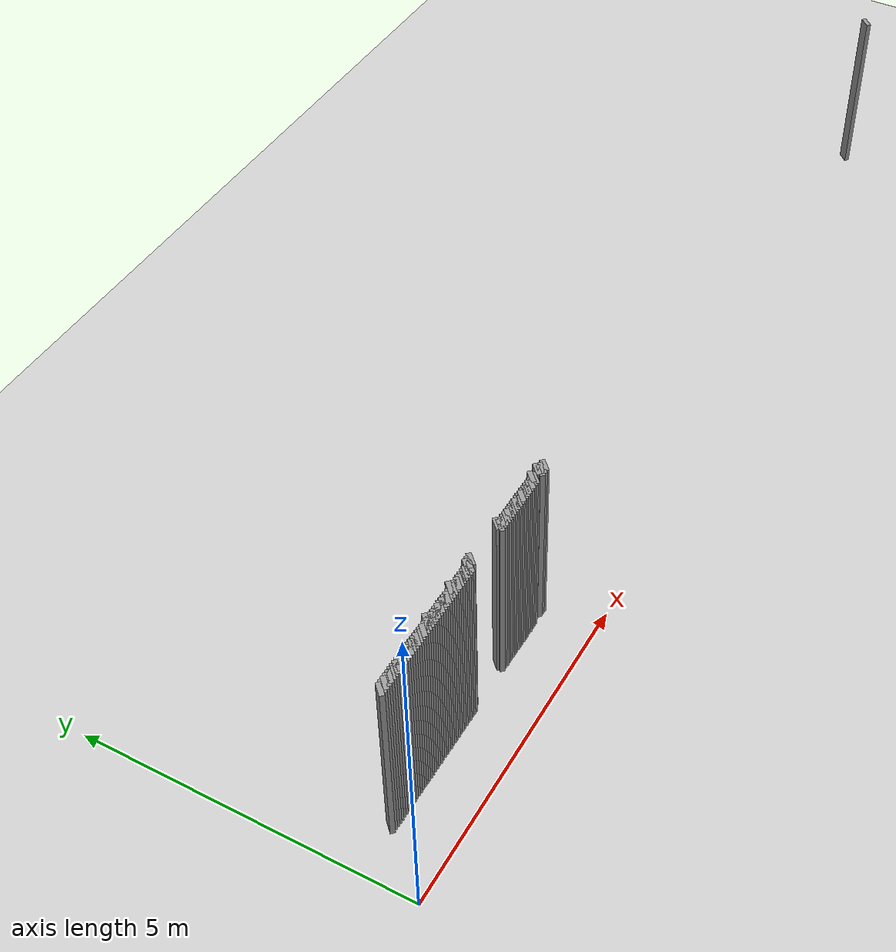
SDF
<sdf version="1.5">
 <world name="default">
  <include><uri>model://ground_plane</uri></include>
  <include><uri>model://sun</uri></include>
  <model name="grey_wall_2590">
   <static>1</static>
   <link name="link">
    <pose>1.85 0.9  1.4 0 0 -0.7853981633974505</pose>
    <collision name="collision">
     <geometry><box><size>0.07071067811865465 .2  2.8</size></box></geometry>
    </collision>
    <visual name="visual">
     <cast_shadows>0</cast_shadows>
     <geometry><box><size>0.07071067811865465 .2  2.8</size></box></geometry>
     <material>
      <script>
       <uri>model://grey_wall/materials/scripts</uri>
       <uri>model://grey_wall/materials/textures</uri>
       <name>vrc/grey_wall</name>
      </script>
     </material>
    </visual>
   </link>
  </model>
  <model name="grey_wall_2591">
   <static>1</static>
   <link name="link">
    <pose>2.4000000000000004 0.9  1.4 0 0 -0.7853981633974505</pose>
    <collision name="collision">
     <geometry><box><size>0.07071067811865465 .2  2.8</size></box></geometry>
    </collision>
    <visual name="visual">
     <cast_shadows>0</cast_shadows>
     <geometry><box><size>0.07071067811865465 .2  2.8</size></box></geometry>
     <material>
      <script>
       <uri>model://grey_wall/materials/scripts</uri>
       <uri>model://grey_wall/materials/textures</uri>
       <name>vrc/grey_wall</name>
      </script>
     </material>
    </visual>
   </link>
  </model>
  <model name="grey_wall_2592">
   <static>1</static>
   <link name="link">
    <pose>2.8000000000000003 0.9  1.4 0 0 -0.7853981633974505</pose>
    <collision name="collision">
     <geometry><box><size>0.07071067811865465 .2  2.8</size></box></geometry>
    </collision>
    <visual name="visual">
     <cast_shadows>0</cast_shadows>
     <geometry><box><size>0.07071067811865465 .2  2.8</size></box></geometry>
     <material>
      <script>
       <uri>model://grey_wall/materials/scripts</uri>
       <uri>model://grey_wall/materials/textures</uri>
       <name>vrc/grey_wall</name>
      </script>
     </material>
    </visual>
   </link>
  </model>
  <model name="grey_wall_2593">
   <static>1</static>
   <link name="link">
    <pose>2.85 0.9  1.4 0 0 -0.7853981633974505</pose>
    <collision name="collision">
     <geometry><box><size>0.07071067811865465 .2  2.8</size></box></geometry>
    </collision>
    <visual name="visual">
     <cast_shadows>0</cast_shadows>
     <geometry><box><size>0.07071067811865465 .2  2.8</size></box></geometry>
     <material>
      <script>
       <uri>model://grey_wall/materials/scripts</uri>
       <uri>model://grey_wall/materials/textures</uri>
       <name>vrc/grey_wall</name>
      </script>
     </material>
    </visual>
   </link>
  </model>
  <model name="grey_wall_2594">
   <static>1</static>
   <link name="link">
    <pose>2.9000000000000004 0.9  1.4 0 0 -0.7853981633974505</pose>
    <collision name="collision">
     <geometry><box><size>0.07071067811865465 .2  2.8</size></box></geometry>
    </collision>
    <visual name="visual">
     <cast_shadows>0</cast_shadows>
     <geometry><box><size>0.07071067811865465 .2  2.8</size></box></geometry>
     <material>
      <script>
       <uri>model://grey_wall/materials/scripts</uri>
       <uri>model://grey_wall/materials/textures</uri>
       <name>vrc/grey_wall</name>
      </script>
     </material>
    </visual>
   </link>
  </model>
  <model name="grey_wall_2595">
   <static>1</static>
   <link name="link">
    <pose>3.5500000000000003 0.9  1.4 0 0 -0.7853981633974505</pose>
    <collision name="collision">
     <geometry><box><size>0.07071067811865465 .2  2.8</size></box></geometry>
    </collision>
    <visual name="visual">
     <cast_shadows>0</cast_shadows>
     <geometry><box><size>0.07071067811865465 .2  2.8</size></box></geometry>
     <material>
      <script>
       <uri>model://grey_wall/materials/scripts</uri>
       <uri>model://grey_wall/materials/textures</uri>
       <name>vrc/grey_wall</name>
      </script>
     </material>
    </visual>
   </link>
  </model>
  <model name="grey_wall_2596">
   <static>1</static>
   <link name="link">
    <pose>4.45 0.9  1.4 0 0 -0.7853981633974416</pose>
    <collision name="collision">
     <geometry><box><size>0.07071067811865529 .2  2.8</size></box></geometry>
    </collision>
    <visual name="visual">
     <cast_shadows>0</cast_shadows>
     <geometry><box><size>0.07071067811865529 .2  2.8</size></box></geometry>
     <material>
      <script>
       <uri>model://grey_wall/materials/scripts</uri>
       <uri>model://grey_wall/materials/textures</uri>
       <name>vrc/grey_wall</name>
      </script>
     </material>
    </visual>
   </link>
  </model>
  <model name="grey_wall_2597">
   <static>1</static>
   <link name="link">
    <pose>4.6000000000000005 0.9  1.4 0 0 -0.7853981633974416</pose>
    <collision name="collision">
     <geometry><box><size>0.07071067811865529 .2  2.8</size></box></geometry>
    </collision>
    <visual name="visual">
     <cast_shadows>0</cast_shadows>
     <geometry><box><size>0.07071067811865529 .2  2.8</size></box></geometry>
     <material>
      <script>
       <uri>model://grey_wall/materials/scripts</uri>
       <uri>model://grey_wall/materials/textures</uri>
       <name>vrc/grey_wall</name>
      </script>
     </material>
    </visual>
   </link>
  </model>
  <model name="grey_wall_2598">
   <static>1</static>
   <link name="link">
    <pose>16.45 0.9  1.4 0 0 -0.7853981633974771</pose>
    <collision name="collision">
     <geometry><box><size>0.07071067811865277 .2  2.8</size></box></geometry>
    </collision>
    <visual name="visual">
     <cast_shadows>0</cast_shadows>
     <geometry><box><size>0.07071067811865277 .2  2.8</size></box></geometry>
     <material>
      <script>
       <uri>model://grey_wall/materials/scripts</uri>
       <uri>model://grey_wall/materials/textures</uri>
       <name>vrc/grey_wall</name>
      </script>
     </material>
    </visual>
   </link>
  </model>
  <model name="grey_wall_2599">
   <static>1</static>
   <link name="link">
    <pose>0.75 0.8500000000000001  1.4 0 0 -0.7853981633974483</pose>
    <collision name="collision">
     <geometry><box><size>0.07071067811865482 .2  2.8</size></box></geometry>
    </collision>
    <visual name="visual">
     <cast_shadows>0</cast_shadows>
     <geometry><box><size>0.07071067811865482 .2  2.8</size></box></geometry>
     <material>
      <script>
       <uri>model://grey_wall/materials/scripts</uri>
       <uri>model://grey_wall/materials/textures</uri>
       <name>vrc/grey_wall</name>
      </script>
     </material>
    </visual>
   </link>
  </model>
  <model name="grey_wall_2600">
   <static>1</static>
   <link name="link">
    <pose>0.8 0.8500000000000001  1.4 0 0 -0.7853981633974483</pose>
    <collision name="collision">
     <geometry><box><size>0.07071067811865482 .2  2.8</size></box></geometry>
    </collision>
    <visual name="visual">
     <cast_shadows>0</cast_shadows>
     <geometry><box><size>0.07071067811865482 .2  2.8</size></box></geometry>
     <material>
      <script>
       <uri>model://grey_wall/materials/scripts</uri>
       <uri>model://grey_wall/materials/textures</uri>
       <name>vrc/grey_wall</name>
      </script>
     </material>
    </visual>
   </link>
  </model>
  <model name="grey_wall_2601">
   <static>1</static>
   <link name="link">
    <pose>0.8500000000000001 0.8500000000000001  1.4 0 0 -0.7853981633974483</pose>
    <collision name="collision">
     <geometry><box><size>0.07071067811865482 .2  2.8</size></box></geometry>
    </collision>
    <visual name="visual">
     <cast_shadows>0</cast_shadows>
     <geometry><box><size>0.07071067811865482 .2  2.8</size></box></geometry>
     <material>
      <script>
       <uri>model://grey_wall/materials/scripts</uri>
       <uri>model://grey_wall/materials/textures</uri>
       <name>vrc/grey_wall</name>
      </script>
     </material>
    </visual>
   </link>
  </model>
  <model name="grey_wall_2602">
   <static>1</static>
   <link name="link">
    <pose>0.9 0.8500000000000001  1.4 0 0 -0.7853981633974483</pose>
    <collision name="collision">
     <geometry><box><size>0.07071067811865482 .2  2.8</size></box></geometry>
    </collision>
    <visual name="visual">
     <cast_shadows>0</cast_shadows>
     <geometry><box><size>0.07071067811865482 .2  2.8</size></box></geometry>
     <material>
      <script>
       <uri>model://grey_wall/materials/scripts</uri>
       <uri>model://grey_wall/materials/textures</uri>
       <name>vrc/grey_wall</name>
      </script>
     </material>
    </visual>
   </link>
  </model>
  <model name="grey_wall_2603">
   <static>1</static>
   <link name="link">
    <pose>0.9500000000000001 0.8500000000000001  1.4 0 0 -0.7853981633974483</pose>
    <collision name="collision">
     <geometry><box><size>0.07071067811865482 .2  2.8</size></box></geometry>
    </collision>
    <visual name="visual">
     <cast_shadows>0</cast_shadows>
     <geometry><box><size>0.07071067811865482 .2  2.8</size></box></geometry>
     <material>
      <script>
       <uri>model://grey_wall/materials/scripts</uri>
       <uri>model://grey_wall/materials/textures</uri>
       <name>vrc/grey_wall</name>
      </script>
     </material>
    </visual>
   </link>
  </model>
  <model name="grey_wall_2604">
   <static>1</static>
   <link name="link">
    <pose>1.0 0.8500000000000001  1.4 0 0 -0.7853981633974494</pose>
    <collision name="collision">
     <geometry><box><size>0.07071067811865474 .2  2.8</size></box></geometry>
    </collision>
    <visual name="visual">
     <cast_shadows>0</cast_shadows>
     <geometry><box><size>0.07071067811865474 .2  2.8</size></box></geometry>
     <material>
      <script>
       <uri>model://grey_wall/materials/scripts</uri>
       <uri>model://grey_wall/materials/textures</uri>
       <name>vrc/grey_wall</name>
      </script>
     </material>
    </visual>
   </link>
  </model>
  <model name="grey_wall_2605">
   <static>1</static>
   <link name="link">
    <pose>1.05 0.8500000000000001  1.4 0 0 -0.7853981633974505</pose>
    <collision name="collision">
     <geometry><box><size>0.07071067811865465 .2  2.8</size></box></geometry>
    </collision>
    <visual name="visual">
     <cast_shadows>0</cast_shadows>
     <geometry><box><size>0.07071067811865465 .2  2.8</size></box></geometry>
     <material>
      <script>
       <uri>model://grey_wall/materials/scripts</uri>
       <uri>model://grey_wall/materials/textures</uri>
       <name>vrc/grey_wall</name>
      </script>
     </material>
    </visual>
   </link>
  </model>
  <model name="grey_wall_2606">
   <static>1</static>
   <link name="link">
    <pose>1.1 0.8500000000000001  1.4 0 0 -0.7853981633974505</pose>
    <collision name="collision">
     <geometry><box><size>0.07071067811865465 .2  2.8</size></box></geometry>
    </collision>
    <visual name="visual">
     <cast_shadows>0</cast_shadows>
     <geometry><box><size>0.07071067811865465 .2  2.8</size></box></geometry>
     <material>
      <script>
       <uri>model://grey_wall/materials/scripts</uri>
       <uri>model://grey_wall/materials/textures</uri>
       <name>vrc/grey_wall</name>
      </script>
     </material>
    </visual>
   </link>
  </model>
  <model name="grey_wall_2607">
   <static>1</static>
   <link name="link">
    <pose>1.1500000000000001 0.8500000000000001  1.4 0 0 -0.7853981633974505</pose>
    <collision name="collision">
     <geometry><box><size>0.07071067811865465 .2  2.8</size></box></geometry>
    </collision>
    <visual name="visual">
     <cast_shadows>0</cast_shadows>
     <geometry><box><size>0.07071067811865465 .2  2.8</size></box></geometry>
     <material>
      <script>
       <uri>model://grey_wall/materials/scripts</uri>
       <uri>model://grey_wall/materials/textures</uri>
       <name>vrc/grey_wall</name>
      </script>
     </material>
    </visual>
   </link>
  </model>
  <model name="grey_wall_2608">
   <static>1</static>
   <link name="link">
    <pose>1.2000000000000002 0.8500000000000001  1.4 0 0 -0.7853981633974505</pose>
    <collision name="collision">
     <geometry><box><size>0.07071067811865465 .2  2.8</size></box></geometry>
    </collision>
    <visual name="visual">
     <cast_shadows>0</cast_shadows>
     <geometry><box><size>0.07071067811865465 .2  2.8</size></box></geometry>
     <material>
      <script>
       <uri>model://grey_wall/materials/scripts</uri>
       <uri>model://grey_wall/materials/textures</uri>
       <name>vrc/grey_wall</name>
      </script>
     </material>
    </visual>
   </link>
  </model>
  <model name="grey_wall_2609">
   <static>1</static>
   <link name="link">
    <pose>1.25 0.8500000000000001  1.4 0 0 -0.7853981633974505</pose>
    <collision name="collision">
     <geometry><box><size>0.07071067811865465 .2  2.8</size></box></geometry>
    </collision>
    <visual name="visual">
     <cast_shadows>0</cast_shadows>
     <geometry><box><size>0.07071067811865465 .2  2.8</size></box></geometry>
     <material>
      <script>
       <uri>model://grey_wall/materials/scripts</uri>
       <uri>model://grey_wall/materials/textures</uri>
       <name>vrc/grey_wall</name>
      </script>
     </material>
    </visual>
   </link>
  </model>
  <model name="grey_wall_2610">
   <static>1</static>
   <link name="link">
    <pose>1.3 0.8500000000000001  1.4 0 0 -0.7853981633974505</pose>
    <collision name="collision">
     <geometry><box><size>0.07071067811865465 .2  2.8</size></box></geometry>
    </collision>
    <visual name="visual">
     <cast_shadows>0</cast_shadows>
     <geometry><box><size>0.07071067811865465 .2  2.8</size></box></geometry>
     <material>
      <script>
       <uri>model://grey_wall/materials/scripts</uri>
       <uri>model://grey_wall/materials/textures</uri>
       <name>vrc/grey_wall</name>
      </script>
     </material>
    </visual>
   </link>
  </model>
  <model name="grey_wall_2611">
   <static>1</static>
   <link name="link">
    <pose>1.35 0.8500000000000001  1.4 0 0 -0.7853981633974505</pose>
    <collision name="collision">
     <geometry><box><size>0.07071067811865465 .2  2.8</size></box></geometry>
    </collision>
    <visual name="visual">
     <cast_shadows>0</cast_shadows>
     <geometry><box><size>0.07071067811865465 .2  2.8</size></box></geometry>
     <material>
      <script>
       <uri>model://grey_wall/materials/scripts</uri>
       <uri>model://grey_wall/materials/textures</uri>
       <name>vrc/grey_wall</name>
      </script>
     </material>
    </visual>
   </link>
  </model>
  <model name="grey_wall_2612">
   <static>1</static>
   <link name="link">
    <pose>1.4000000000000001 0.8500000000000001  1.4 0 0 -0.7853981633974505</pose>
    <collision name="collision">
     <geometry><box><size>0.07071067811865465 .2  2.8</size></box></geometry>
    </collision>
    <visual name="visual">
     <cast_shadows>0</cast_shadows>
     <geometry><box><size>0.07071067811865465 .2  2.8</size></box></geometry>
     <material>
      <script>
       <uri>model://grey_wall/materials/scripts</uri>
       <uri>model://grey_wall/materials/textures</uri>
       <name>vrc/grey_wall</name>
      </script>
     </material>
    </visual>
   </link>
  </model>
  <model name="grey_wall_2613">
   <static>1</static>
   <link name="link">
    <pose>1.4500000000000002 0.8500000000000001  1.4 0 0 -0.7853981633974505</pose>
    <collision name="collision">
     <geometry><box><size>0.07071067811865465 .2  2.8</size></box></geometry>
    </collision>
    <visual name="visual">
     <cast_shadows>0</cast_shadows>
     <geometry><box><size>0.07071067811865465 .2  2.8</size></box></geometry>
     <material>
      <script>
       <uri>model://grey_wall/materials/scripts</uri>
       <uri>model://grey_wall/materials/textures</uri>
       <name>vrc/grey_wall</name>
      </script>
     </material>
    </visual>
   </link>
  </model>
  <model name="grey_wall_2614">
   <static>1</static>
   <link name="link">
    <pose>1.5 0.8500000000000001  1.4 0 0 -0.7853981633974505</pose>
    <collision name="collision">
     <geometry><box><size>0.07071067811865465 .2  2.8</size></box></geometry>
    </collision>
    <visual name="visual">
     <cast_shadows>0</cast_shadows>
     <geometry><box><size>0.07071067811865465 .2  2.8</size></box></geometry>
     <material>
      <script>
       <uri>model://grey_wall/materials/scripts</uri>
       <uri>model://grey_wall/materials/textures</uri>
       <name>vrc/grey_wall</name>
      </script>
     </material>
    </visual>
   </link>
  </model>
  <model name="grey_wall_2615">
   <static>1</static>
   <link name="link">
    <pose>1.55 0.8500000000000001  1.4 0 0 -0.7853981633974505</pose>
    <collision name="collision">
     <geometry><box><size>0.07071067811865465 .2  2.8</size></box></geometry>
    </collision>
    <visual name="visual">
     <cast_shadows>0</cast_shadows>
     <geometry><box><size>0.07071067811865465 .2  2.8</size></box></geometry>
     <material>
      <script>
       <uri>model://grey_wall/materials/scripts</uri>
       <uri>model://grey_wall/materials/textures</uri>
       <name>vrc/grey_wall</name>
      </script>
     </material>
    </visual>
   </link>
  </model>
  <model name="grey_wall_2616">
   <static>1</static>
   <link name="link">
    <pose>1.6 0.8500000000000001  1.4 0 0 -0.7853981633974505</pose>
    <collision name="collision">
     <geometry><box><size>0.07071067811865465 .2  2.8</size></box></geometry>
    </collision>
    <visual name="visual">
     <cast_shadows>0</cast_shadows>
     <geometry><box><size>0.07071067811865465 .2  2.8</size></box></geometry>
     <material>
      <script>
       <uri>model://grey_wall/materials/scripts</uri>
       <uri>model://grey_wall/materials/textures</uri>
       <name>vrc/grey_wall</name>
      </script>
     </material>
    </visual>
   </link>
  </model>
  <model name="grey_wall_2617">
   <static>1</static>
   <link name="link">
    <pose>1.6500000000000001 0.8500000000000001  1.4 0 0 -0.7853981633974505</pose>
    <collision name="collision">
     <geometry><box><size>0.07071067811865465 .2  2.8</size></box></geometry>
    </collision>
    <visual name="visual">
     <cast_shadows>0</cast_shadows>
     <geometry><box><size>0.07071067811865465 .2  2.8</size></box></geometry>
     <material>
      <script>
       <uri>model://grey_wall/materials/scripts</uri>
       <uri>model://grey_wall/materials/textures</uri>
       <name>vrc/grey_wall</name>
      </script>
     </material>
    </visual>
   </link>
  </model>
  <model name="grey_wall_2618">
   <static>1</static>
   <link name="link">
    <pose>1.7000000000000002 0.8500000000000001  1.4 0 0 -0.7853981633974505</pose>
    <collision name="collision">
     <geometry><box><size>0.07071067811865465 .2  2.8</size></box></geometry>
    </collision>
    <visual name="visual">
     <cast_shadows>0</cast_shadows>
     <geometry><box><size>0.07071067811865465 .2  2.8</size></box></geometry>
     <material>
      <script>
       <uri>model://grey_wall/materials/scripts</uri>
       <uri>model://grey_wall/materials/textures</uri>
       <name>vrc/grey_wall</name>
      </script>
     </material>
    </visual>
   </link>
  </model>
  <model name="grey_wall_2619">
   <static>1</static>
   <link name="link">
    <pose>1.75 0.8500000000000001  1.4 0 0 -0.7853981633974505</pose>
    <collision name="collision">
     <geometry><box><size>0.07071067811865465 .2  2.8</size></box></geometry>
    </collision>
    <visual name="visual">
     <cast_shadows>0</cast_shadows>
     <geometry><box><size>0.07071067811865465 .2  2.8</size></box></geometry>
     <material>
      <script>
       <uri>model://grey_wall/materials/scripts</uri>
       <uri>model://grey_wall/materials/textures</uri>
       <name>vrc/grey_wall</name>
      </script>
     </material>
    </visual>
   </link>
  </model>
  <model name="grey_wall_2620">
   <static>1</static>
   <link name="link">
    <pose>1.8 0.8500000000000001  1.4 0 0 -0.7853981633974505</pose>
    <collision name="collision">
     <geometry><box><size>0.07071067811865465 .2  2.8</size></box></geometry>
    </collision>
    <visual name="visual">
     <cast_shadows>0</cast_shadows>
     <geometry><box><size>0.07071067811865465 .2  2.8</size></box></geometry>
     <material>
      <script>
       <uri>model://grey_wall/materials/scripts</uri>
       <uri>model://grey_wall/materials/textures</uri>
       <name>vrc/grey_wall</name>
      </script>
     </material>
    </visual>
   </link>
  </model>
  <model name="grey_wall_2621">
   <static>1</static>
   <link name="link">
    <pose>1.85 0.8500000000000001  1.4 0 0 -0.7853981633974505</pose>
    <collision name="collision">
     <geometry><box><size>0.07071067811865465 .2  2.8</size></box></geometry>
    </collision>
    <visual name="visual">
     <cast_shadows>0</cast_shadows>
     <geometry><box><size>0.07071067811865465 .2  2.8</size></box></geometry>
     <material>
      <script>
       <uri>model://grey_wall/materials/scripts</uri>
       <uri>model://grey_wall/materials/textures</uri>
       <name>vrc/grey_wall</name>
      </script>
     </material>
    </visual>
   </link>
  </model>
  <model name="grey_wall_2622">
   <static>1</static>
   <link name="link">
    <pose>1.9000000000000001 0.8500000000000001  1.4 0 0 -0.7853981633974505</pose>
    <collision name="collision">
     <geometry><box><size>0.07071067811865465 .2  2.8</size></box></geometry>
    </collision>
    <visual name="visual">
     <cast_shadows>0</cast_shadows>
     <geometry><box><size>0.07071067811865465 .2  2.8</size></box></geometry>
     <material>
      <script>
       <uri>model://grey_wall/materials/scripts</uri>
       <uri>model://grey_wall/materials/textures</uri>
       <name>vrc/grey_wall</name>
      </script>
     </material>
    </visual>
   </link>
  </model>
  <model name="grey_wall_2623">
   <static>1</static>
   <link name="link">
    <pose>1.9500000000000002 0.8500000000000001  1.4 0 0 -0.7853981633974505</pose>
    <collision name="collision">
     <geometry><box><size>0.07071067811865465 .2  2.8</size></box></geometry>
    </collision>
    <visual name="visual">
     <cast_shadows>0</cast_shadows>
     <geometry><box><size>0.07071067811865465 .2  2.8</size></box></geometry>
     <material>
      <script>
       <uri>model://grey_wall/materials/scripts</uri>
       <uri>model://grey_wall/materials/textures</uri>
       <name>vrc/grey_wall</name>
      </script>
     </material>
    </visual>
   </link>
  </model>
  <model name="grey_wall_2624">
   <static>1</static>
   <link name="link">
    <pose>2.0 0.8500000000000001  1.4 0 0 -0.7853981633974505</pose>
    <collision name="collision">
     <geometry><box><size>0.07071067811865465 .2  2.8</size></box></geometry>
    </collision>
    <visual name="visual">
     <cast_shadows>0</cast_shadows>
     <geometry><box><size>0.07071067811865465 .2  2.8</size></box></geometry>
     <material>
      <script>
       <uri>model://grey_wall/materials/scripts</uri>
       <uri>model://grey_wall/materials/textures</uri>
       <name>vrc/grey_wall</name>
      </script>
     </material>
    </visual>
   </link>
  </model>
  <model name="grey_wall_2625">
   <static>1</static>
   <link name="link">
    <pose>2.0500000000000003 0.8500000000000001  1.4 0 0 -0.7853981633974505</pose>
    <collision name="collision">
     <geometry><box><size>0.07071067811865465 .2  2.8</size></box></geometry>
    </collision>
    <visual name="visual">
     <cast_shadows>0</cast_shadows>
     <geometry><box><size>0.07071067811865465 .2  2.8</size></box></geometry>
     <material>
      <script>
       <uri>model://grey_wall/materials/scripts</uri>
       <uri>model://grey_wall/materials/textures</uri>
       <name>vrc/grey_wall</name>
      </script>
     </material>
    </visual>
   </link>
  </model>
  <model name="grey_wall_2626">
   <static>1</static>
   <link name="link">
    <pose>2.1 0.8500000000000001  1.4 0 0 -0.7853981633974505</pose>
    <collision name="collision">
     <geometry><box><size>0.07071067811865465 .2  2.8</size></box></geometry>
    </collision>
    <visual name="visual">
     <cast_shadows>0</cast_shadows>
     <geometry><box><size>0.07071067811865465 .2  2.8</size></box></geometry>
     <material>
      <script>
       <uri>model://grey_wall/materials/scripts</uri>
       <uri>model://grey_wall/materials/textures</uri>
       <name>vrc/grey_wall</name>
      </script>
     </material>
    </visual>
   </link>
  </model>
  <model name="grey_wall_2627">
   <static>1</static>
   <link name="link">
    <pose>2.15 0.8500000000000001  1.4 0 0 -0.7853981633974505</pose>
    <collision name="collision">
     <geometry><box><size>0.07071067811865465 .2  2.8</size></box></geometry>
    </collision>
    <visual name="visual">
     <cast_shadows>0</cast_shadows>
     <geometry><box><size>0.07071067811865465 .2  2.8</size></box></geometry>
     <material>
      <script>
       <uri>model://grey_wall/materials/scripts</uri>
       <uri>model://grey_wall/materials/textures</uri>
       <name>vrc/grey_wall</name>
      </script>
     </material>
    </visual>
   </link>
  </model>
  <model name="grey_wall_2628">
   <static>1</static>
   <link name="link">
    <pose>2.2 0.8500000000000001  1.4 0 0 -0.7853981633974505</pose>
    <collision name="collision">
     <geometry><box><size>0.07071067811865465 .2  2.8</size></box></geometry>
    </collision>
    <visual name="visual">
     <cast_shadows>0</cast_shadows>
     <geometry><box><size>0.07071067811865465 .2  2.8</size></box></geometry>
     <material>
      <script>
       <uri>model://grey_wall/materials/scripts</uri>
       <uri>model://grey_wall/materials/textures</uri>
       <name>vrc/grey_wall</name>
      </script>
     </material>
    </visual>
   </link>
  </model>
  <model name="grey_wall_2629">
   <static>1</static>
   <link name="link">
    <pose>2.25 0.8500000000000001  1.4 0 0 -0.7853981633974505</pose>
    <collision name="collision">
     <geometry><box><size>0.07071067811865465 .2  2.8</size></box></geometry>
    </collision>
    <visual name="visual">
     <cast_shadows>0</cast_shadows>
     <geometry><box><size>0.07071067811865465 .2  2.8</size></box></geometry>
     <material>
      <script>
       <uri>model://grey_wall/materials/scripts</uri>
       <uri>model://grey_wall/materials/textures</uri>
       <name>vrc/grey_wall</name>
      </script>
     </material>
    </visual>
   </link>
  </model>
  <model name="grey_wall_2630">
   <static>1</static>
   <link name="link">
    <pose>2.3000000000000003 0.8500000000000001  1.4 0 0 -0.7853981633974505</pose>
    <collision name="collision">
     <geometry><box><size>0.07071067811865465 .2  2.8</size></box></geometry>
    </collision>
    <visual name="visual">
     <cast_shadows>0</cast_shadows>
     <geometry><box><size>0.07071067811865465 .2  2.8</size></box></geometry>
     <material>
      <script>
       <uri>model://grey_wall/materials/scripts</uri>
       <uri>model://grey_wall/materials/textures</uri>
       <name>vrc/grey_wall</name>
      </script>
     </material>
    </visual>
   </link>
  </model>
  <model name="grey_wall_2631">
   <static>1</static>
   <link name="link">
    <pose>2.35 0.8500000000000001  1.4 0 0 -0.7853981633974505</pose>
    <collision name="collision">
     <geometry><box><size>0.07071067811865465 .2  2.8</size></box></geometry>
    </collision>
    <visual name="visual">
     <cast_shadows>0</cast_shadows>
     <geometry><box><size>0.07071067811865465 .2  2.8</size></box></geometry>
     <material>
      <script>
       <uri>model://grey_wall/materials/scripts</uri>
       <uri>model://grey_wall/materials/textures</uri>
       <name>vrc/grey_wall</name>
      </script>
     </material>
    </visual>
   </link>
  </model>
  <model name="grey_wall_2632">
   <static>1</static>
   <link name="link">
    <pose>2.4000000000000004 0.8500000000000001  1.4 0 0 -0.7853981633974505</pose>
    <collision name="collision">
     <geometry><box><size>0.07071067811865465 .2  2.8</size></box></geometry>
    </collision>
    <visual name="visual">
     <cast_shadows>0</cast_shadows>
     <geometry><box><size>0.07071067811865465 .2  2.8</size></box></geometry>
     <material>
      <script>
       <uri>model://grey_wall/materials/scripts</uri>
       <uri>model://grey_wall/materials/textures</uri>
       <name>vrc/grey_wall</name>
      </script>
     </material>
    </visual>
   </link>
  </model>
  <model name="grey_wall_2633">
   <static>1</static>
   <link name="link">
    <pose>2.45 0.8500000000000001  1.4 0 0 -0.7853981633974505</pose>
    <collision name="collision">
     <geometry><box><size>0.07071067811865465 .2  2.8</size></box></geometry>
    </collision>
    <visual name="visual">
     <cast_shadows>0</cast_shadows>
     <geometry><box><size>0.07071067811865465 .2  2.8</size></box></geometry>
     <material>
      <script>
       <uri>model://grey_wall/materials/scripts</uri>
       <uri>model://grey_wall/materials/textures</uri>
       <name>vrc/grey_wall</name>
      </script>
     </material>
    </visual>
   </link>
  </model>
  <model name="grey_wall_2634">
   <static>1</static>
   <link name="link">
    <pose>2.5 0.8500000000000001  1.4 0 0 -0.7853981633974505</pose>
    <collision name="collision">
     <geometry><box><size>0.07071067811865465 .2  2.8</size></box></geometry>
    </collision>
    <visual name="visual">
     <cast_shadows>0</cast_shadows>
     <geometry><box><size>0.07071067811865465 .2  2.8</size></box></geometry>
     <material>
      <script>
       <uri>model://grey_wall/materials/scripts</uri>
       <uri>model://grey_wall/materials/textures</uri>
       <name>vrc/grey_wall</name>
      </script>
     </material>
    </visual>
   </link>
  </model>
  <model name="grey_wall_2635">
   <static>1</static>
   <link name="link">
    <pose>2.5500000000000003 0.8500000000000001  1.4 0 0 -0.7853981633974505</pose>
    <collision name="collision">
     <geometry><box><size>0.07071067811865465 .2  2.8</size></box></geometry>
    </collision>
    <visual name="visual">
     <cast_shadows>0</cast_shadows>
     <geometry><box><size>0.07071067811865465 .2  2.8</size></box></geometry>
     <material>
      <script>
       <uri>model://grey_wall/materials/scripts</uri>
       <uri>model://grey_wall/materials/textures</uri>
       <name>vrc/grey_wall</name>
      </script>
     </material>
    </visual>
   </link>
  </model>
  <model name="grey_wall_2636">
   <static>1</static>
   <link name="link">
    <pose>2.6 0.8500000000000001  1.4 0 0 -0.7853981633974505</pose>
    <collision name="collision">
     <geometry><box><size>0.07071067811865465 .2  2.8</size></box></geometry>
    </collision>
    <visual name="visual">
     <cast_shadows>0</cast_shadows>
     <geometry><box><size>0.07071067811865465 .2  2.8</size></box></geometry>
     <material>
      <script>
       <uri>model://grey_wall/materials/scripts</uri>
       <uri>model://grey_wall/materials/textures</uri>
       <name>vrc/grey_wall</name>
      </script>
     </material>
    </visual>
   </link>
  </model>
  <model name="grey_wall_2637">
   <static>1</static>
   <link name="link">
    <pose>2.6500000000000004 0.8500000000000001  1.4 0 0 -0.7853981633974505</pose>
    <collision name="collision">
     <geometry><box><size>0.07071067811865465 .2  2.8</size></box></geometry>
    </collision>
    <visual name="visual">
     <cast_shadows>0</cast_shadows>
     <geometry><box><size>0.07071067811865465 .2  2.8</size></box></geometry>
     <material>
      <script>
       <uri>model://grey_wall/materials/scripts</uri>
       <uri>model://grey_wall/materials/textures</uri>
       <name>vrc/grey_wall</name>
      </script>
     </material>
    </visual>
   </link>
  </model>
  <model name="grey_wall_2638">
   <static>1</static>
   <link name="link">
    <pose>2.7 0.8500000000000001  1.4 0 0 -0.7853981633974505</pose>
    <collision name="collision">
     <geometry><box><size>0.07071067811865465 .2  2.8</size></box></geometry>
    </collision>
    <visual name="visual">
     <cast_shadows>0</cast_shadows>
     <geometry><box><size>0.07071067811865465 .2  2.8</size></box></geometry>
     <material>
      <script>
       <uri>model://grey_wall/materials/scripts</uri>
       <uri>model://grey_wall/materials/textures</uri>
       <name>vrc/grey_wall</name>
      </script>
     </material>
    </visual>
   </link>
  </model>
  <model name="grey_wall_2639">
   <static>1</static>
   <link name="link">
    <pose>2.75 0.8500000000000001  1.4 0 0 -0.7853981633974505</pose>
    <collision name="collision">
     <geometry><box><size>0.07071067811865465 .2  2.8</size></box></geometry>
    </collision>
    <visual name="visual">
     <cast_shadows>0</cast_shadows>
     <geometry><box><size>0.07071067811865465 .2  2.8</size></box></geometry>
     <material>
      <script>
       <uri>model://grey_wall/materials/scripts</uri>
       <uri>model://grey_wall/materials/textures</uri>
       <name>vrc/grey_wall</name>
      </script>
     </material>
    </visual>
   </link>
  </model>
  <model name="grey_wall_2640">
   <static>1</static>
   <link name="link">
    <pose>2.8000000000000003 0.8500000000000001  1.4 0 0 -0.7853981633974505</pose>
    <collision name="collision">
     <geometry><box><size>0.07071067811865465 .2  2.8</size></box></geometry>
    </collision>
    <visual name="visual">
     <cast_shadows>0</cast_shadows>
     <geometry><box><size>0.07071067811865465 .2  2.8</size></box></geometry>
     <material>
      <script>
       <uri>model://grey_wall/materials/scripts</uri>
       <uri>model://grey_wall/materials/textures</uri>
       <name>vrc/grey_wall</name>
      </script>
     </material>
    </visual>
   </link>
  </model>
  <model name="grey_wall_2641">
   <static>1</static>
   <link name="link">
    <pose>3.5500000000000003 0.8500000000000001  1.4 0 0 -0.7853981633974505</pose>
    <collision name="collision">
     <geometry><box><size>0.07071067811865465 .2  2.8</size></box></geometry>
    </collision>
    <visual name="visual">
     <cast_shadows>0</cast_shadows>
     <geometry><box><size>0.07071067811865465 .2  2.8</size></box></geometry>
     <material>
      <script>
       <uri>model://grey_wall/materials/scripts</uri>
       <uri>model://grey_wall/materials/textures</uri>
       <name>vrc/grey_wall</name>
      </script>
     </material>
    </visual>
   </link>
  </model>
  <model name="grey_wall_2642">
   <static>1</static>
   <link name="link">
    <pose>3.6 0.8500000000000001  1.4 0 0 -0.7853981633974505</pose>
    <collision name="collision">
     <geometry><box><size>0.07071067811865465 .2  2.8</size></box></geometry>
    </collision>
    <visual name="visual">
     <cast_shadows>0</cast_shadows>
     <geometry><box><size>0.07071067811865465 .2  2.8</size></box></geometry>
     <material>
      <script>
       <uri>model://grey_wall/materials/scripts</uri>
       <uri>model://grey_wall/materials/textures</uri>
       <name>vrc/grey_wall</name>
      </script>
     </material>
    </visual>
   </link>
  </model>
  <model name="grey_wall_2643">
   <static>1</static>
   <link name="link">
    <pose>3.6500000000000004 0.8500000000000001  1.4 0 0 -0.7853981633974505</pose>
    <collision name="collision">
     <geometry><box><size>0.07071067811865465 .2  2.8</size></box></geometry>
    </collision>
    <visual name="visual">
     <cast_shadows>0</cast_shadows>
     <geometry><box><size>0.07071067811865465 .2  2.8</size></box></geometry>
     <material>
      <script>
       <uri>model://grey_wall/materials/scripts</uri>
       <uri>model://grey_wall/materials/textures</uri>
       <name>vrc/grey_wall</name>
      </script>
     </material>
    </visual>
   </link>
  </model>
  <model name="grey_wall_2644">
   <static>1</static>
   <link name="link">
    <pose>3.7 0.8500000000000001  1.4 0 0 -0.7853981633974505</pose>
    <collision name="collision">
     <geometry><box><size>0.07071067811865465 .2  2.8</size></box></geometry>
    </collision>
    <visual name="visual">
     <cast_shadows>0</cast_shadows>
     <geometry><box><size>0.07071067811865465 .2  2.8</size></box></geometry>
     <material>
      <script>
       <uri>model://grey_wall/materials/scripts</uri>
       <uri>model://grey_wall/materials/textures</uri>
       <name>vrc/grey_wall</name>
      </script>
     </material>
    </visual>
   </link>
  </model>
  <model name="grey_wall_2645">
   <static>1</static>
   <link name="link">
    <pose>3.75 0.8500000000000001  1.4 0 0 -0.7853981633974505</pose>
    <collision name="collision">
     <geometry><box><size>0.07071067811865465 .2  2.8</size></box></geometry>
    </collision>
    <visual name="visual">
     <cast_shadows>0</cast_shadows>
     <geometry><box><size>0.07071067811865465 .2  2.8</size></box></geometry>
     <material>
      <script>
       <uri>model://grey_wall/materials/scripts</uri>
       <uri>model://grey_wall/materials/textures</uri>
       <name>vrc/grey_wall</name>
      </script>
     </material>
    </visual>
   </link>
  </model>
  <model name="grey_wall_2646">
   <static>1</static>
   <link name="link">
    <pose>3.8000000000000003 0.8500000000000001  1.4 0 0 -0.7853981633974505</pose>
    <collision name="collision">
     <geometry><box><size>0.07071067811865465 .2  2.8</size></box></geometry>
    </collision>
    <visual name="visual">
     <cast_shadows>0</cast_shadows>
     <geometry><box><size>0.07071067811865465 .2  2.8</size></box></geometry>
     <material>
      <script>
       <uri>model://grey_wall/materials/scripts</uri>
       <uri>model://grey_wall/materials/textures</uri>
       <name>vrc/grey_wall</name>
      </script>
     </material>
    </visual>
   </link>
  </model>
  <model name="grey_wall_2647">
   <static>1</static>
   <link name="link">
    <pose>3.85 0.8500000000000001  1.4 0 0 -0.7853981633974505</pose>
    <collision name="collision">
     <geometry><box><size>0.07071067811865465 .2  2.8</size></box></geometry>
    </collision>
    <visual name="visual">
     <cast_shadows>0</cast_shadows>
     <geometry><box><size>0.07071067811865465 .2  2.8</size></box></geometry>
     <material>
      <script>
       <uri>model://grey_wall/materials/scripts</uri>
       <uri>model://grey_wall/materials/textures</uri>
       <name>vrc/grey_wall</name>
      </script>
     </material>
    </visual>
   </link>
  </model>
  <model name="grey_wall_2648">
   <static>1</static>
   <link name="link">
    <pose>3.9000000000000004 0.8500000000000001  1.4 0 0 -0.7853981633974505</pose>
    <collision name="collision">
     <geometry><box><size>0.07071067811865465 .2  2.8</size></box></geometry>
    </collision>
    <visual name="visual">
     <cast_shadows>0</cast_shadows>
     <geometry><box><size>0.07071067811865465 .2  2.8</size></box></geometry>
     <material>
      <script>
       <uri>model://grey_wall/materials/scripts</uri>
       <uri>model://grey_wall/materials/textures</uri>
       <name>vrc/grey_wall</name>
      </script>
     </material>
    </visual>
   </link>
  </model>
  <model name="grey_wall_2649">
   <static>1</static>
   <link name="link">
    <pose>3.95 0.8500000000000001  1.4 0 0 -0.7853981633974505</pose>
    <collision name="collision">
     <geometry><box><size>0.07071067811865465 .2  2.8</size></box></geometry>
    </collision>
    <visual name="visual">
     <cast_shadows>0</cast_shadows>
     <geometry><box><size>0.07071067811865465 .2  2.8</size></box></geometry>
     <material>
      <script>
       <uri>model://grey_wall/materials/scripts</uri>
       <uri>model://grey_wall/materials/textures</uri>
       <name>vrc/grey_wall</name>
      </script>
     </material>
    </visual>
   </link>
  </model>
  <model name="grey_wall_2650">
   <static>1</static>
   <link name="link">
    <pose>4.0 0.8500000000000001  1.4 0 0 -0.7853981633974461</pose>
    <collision name="collision">
     <geometry><box><size>0.07071067811865497 .2  2.8</size></box></geometry>
    </collision>
    <visual name="visual">
     <cast_shadows>0</cast_shadows>
     <geometry><box><size>0.07071067811865497 .2  2.8</size></box></geometry>
     <material>
      <script>
       <uri>model://grey_wall/materials/scripts</uri>
       <uri>model://grey_wall/materials/textures</uri>
       <name>vrc/grey_wall</name>
      </script>
     </material>
    </visual>
   </link>
  </model>
  <model name="grey_wall_2651">
   <static>1</static>
   <link name="link">
    <pose>4.05 0.8500000000000001  1.4 0 0 -0.7853981633974416</pose>
    <collision name="collision">
     <geometry><box><size>0.07071067811865529 .2  2.8</size></box></geometry>
    </collision>
    <visual name="visual">
     <cast_shadows>0</cast_shadows>
     <geometry><box><size>0.07071067811865529 .2  2.8</size></box></geometry>
     <material>
      <script>
       <uri>model://grey_wall/materials/scripts</uri>
       <uri>model://grey_wall/materials/textures</uri>
       <name>vrc/grey_wall</name>
      </script>
     </material>
    </visual>
   </link>
  </model>
  <model name="grey_wall_2652">
   <static>1</static>
   <link name="link">
    <pose>4.1000000000000005 0.8500000000000001  1.4 0 0 -0.7853981633974416</pose>
    <collision name="collision">
     <geometry><box><size>0.07071067811865529 .2  2.8</size></box></geometry>
    </collision>
    <visual name="visual">
     <cast_shadows>0</cast_shadows>
     <geometry><box><size>0.07071067811865529 .2  2.8</size></box></geometry>
     <material>
      <script>
       <uri>model://grey_wall/materials/scripts</uri>
       <uri>model://grey_wall/materials/textures</uri>
       <name>vrc/grey_wall</name>
      </script>
     </material>
    </visual>
   </link>
  </model>
  <model name="grey_wall_2653">
   <static>1</static>
   <link name="link">
    <pose>4.15 0.8500000000000001  1.4 0 0 -0.7853981633974416</pose>
    <collision name="collision">
     <geometry><box><size>0.07071067811865529 .2  2.8</size></box></geometry>
    </collision>
    <visual name="visual">
     <cast_shadows>0</cast_shadows>
     <geometry><box><size>0.07071067811865529 .2  2.8</size></box></geometry>
     <material>
      <script>
       <uri>model://grey_wall/materials/scripts</uri>
       <uri>model://grey_wall/materials/textures</uri>
       <name>vrc/grey_wall</name>
      </script>
     </material>
    </visual>
   </link>
  </model>
  <model name="grey_wall_2654">
   <static>1</static>
   <link name="link">
    <pose>4.2 0.8500000000000001  1.4 0 0 -0.7853981633974416</pose>
    <collision name="collision">
     <geometry><box><size>0.07071067811865529 .2  2.8</size></box></geometry>
    </collision>
    <visual name="visual">
     <cast_shadows>0</cast_shadows>
     <geometry><box><size>0.07071067811865529 .2  2.8</size></box></geometry>
     <material>
      <script>
       <uri>model://grey_wall/materials/scripts</uri>
       <uri>model://grey_wall/materials/textures</uri>
       <name>vrc/grey_wall</name>
      </script>
     </material>
    </visual>
   </link>
  </model>
  <model name="grey_wall_2655">
   <static>1</static>
   <link name="link">
    <pose>4.25 0.8500000000000001  1.4 0 0 -0.7853981633974416</pose>
    <collision name="collision">
     <geometry><box><size>0.07071067811865529 .2  2.8</size></box></geometry>
    </collision>
    <visual name="visual">
     <cast_shadows>0</cast_shadows>
     <geometry><box><size>0.07071067811865529 .2  2.8</size></box></geometry>
     <material>
      <script>
       <uri>model://grey_wall/materials/scripts</uri>
       <uri>model://grey_wall/materials/textures</uri>
       <name>vrc/grey_wall</name>
      </script>
     </material>
    </visual>
   </link>
  </model>
  <model name="grey_wall_2656">
   <static>1</static>
   <link name="link">
    <pose>4.3 0.8500000000000001  1.4 0 0 -0.7853981633974416</pose>
    <collision name="collision">
     <geometry><box><size>0.07071067811865529 .2  2.8</size></box></geometry>
    </collision>
    <visual name="visual">
     <cast_shadows>0</cast_shadows>
     <geometry><box><size>0.07071067811865529 .2  2.8</size></box></geometry>
     <material>
      <script>
       <uri>model://grey_wall/materials/scripts</uri>
       <uri>model://grey_wall/materials/textures</uri>
       <name>vrc/grey_wall</name>
      </script>
     </material>
    </visual>
   </link>
  </model>
  <model name="grey_wall_2657">
   <static>1</static>
   <link name="link">
    <pose>4.3500000000000005 0.8500000000000001  1.4 0 0 -0.7853981633974416</pose>
    <collision name="collision">
     <geometry><box><size>0.07071067811865529 .2  2.8</size></box></geometry>
    </collision>
    <visual name="visual">
     <cast_shadows>0</cast_shadows>
     <geometry><box><size>0.07071067811865529 .2  2.8</size></box></geometry>
     <material>
      <script>
       <uri>model://grey_wall/materials/scripts</uri>
       <uri>model://grey_wall/materials/textures</uri>
       <name>vrc/grey_wall</name>
      </script>
     </material>
    </visual>
   </link>
  </model>
  <model name="grey_wall_2658">
   <static>1</static>
   <link name="link">
    <pose>4.4 0.8500000000000001  1.4 0 0 -0.7853981633974416</pose>
    <collision name="collision">
     <geometry><box><size>0.07071067811865529 .2  2.8</size></box></geometry>
    </collision>
    <visual name="visual">
     <cast_shadows>0</cast_shadows>
     <geometry><box><size>0.07071067811865529 .2  2.8</size></box></geometry>
     <material>
      <script>
       <uri>model://grey_wall/materials/scripts</uri>
       <uri>model://grey_wall/materials/textures</uri>
       <name>vrc/grey_wall</name>
      </script>
     </material>
    </visual>
   </link>
  </model>
  <model name="grey_wall_2659">
   <static>1</static>
   <link name="link">
    <pose>4.45 0.8500000000000001  1.4 0 0 -0.7853981633974416</pose>
    <collision name="collision">
     <geometry><box><size>0.07071067811865529 .2  2.8</size></box></geometry>
    </collision>
    <visual name="visual">
     <cast_shadows>0</cast_shadows>
     <geometry><box><size>0.07071067811865529 .2  2.8</size></box></geometry>
     <material>
      <script>
       <uri>model://grey_wall/materials/scripts</uri>
       <uri>model://grey_wall/materials/textures</uri>
       <name>vrc/grey_wall</name>
      </script>
     </material>
    </visual>
   </link>
  </model>
  <model name="grey_wall_2660">
   <static>1</static>
   <link name="link">
    <pose>4.6000000000000005 0.8500000000000001  1.4 0 0 -0.7853981633974416</pose>
    <collision name="collision">
     <geometry><box><size>0.07071067811865529 .2  2.8</size></box></geometry>
    </collision>
    <visual name="visual">
     <cast_shadows>0</cast_shadows>
     <geometry><box><size>0.07071067811865529 .2  2.8</size></box></geometry>
     <material>
      <script>
       <uri>model://grey_wall/materials/scripts</uri>
       <uri>model://grey_wall/materials/textures</uri>
       <name>vrc/grey_wall</name>
      </script>
     </material>
    </visual>
   </link>
  </model>
  <model name="grey_wall_2661">
   <static>1</static>
   <link name="link">
    <pose>4.65 0.8500000000000001  1.4 0 0 -0.7853981633974416</pose>
    <collision name="collision">
     <geometry><box><size>0.07071067811865529 .2  2.8</size></box></geometry>
    </collision>
    <visual name="visual">
     <cast_shadows>0</cast_shadows>
     <geometry><box><size>0.07071067811865529 .2  2.8</size></box></geometry>
     <material>
      <script>
       <uri>model://grey_wall/materials/scripts</uri>
       <uri>model://grey_wall/materials/textures</uri>
       <name>vrc/grey_wall</name>
      </script>
     </material>
    </visual>
   </link>
  </model>
  <model name="grey_wall_2662">
   <static>1</static>
   <link name="link">
    <pose>4.7 0.8500000000000001  1.4 0 0 -0.7853981633974416</pose>
    <collision name="collision">
     <geometry><box><size>0.07071067811865529 .2  2.8</size></box></geometry>
    </collision>
    <visual name="visual">
     <cast_shadows>0</cast_shadows>
     <geometry><box><size>0.07071067811865529 .2  2.8</size></box></geometry>
     <material>
      <script>
       <uri>model://grey_wall/materials/scripts</uri>
       <uri>model://grey_wall/materials/textures</uri>
       <name>vrc/grey_wall</name>
      </script>
     </material>
    </visual>
   </link>
  </model>
 </world>
</sdf>
